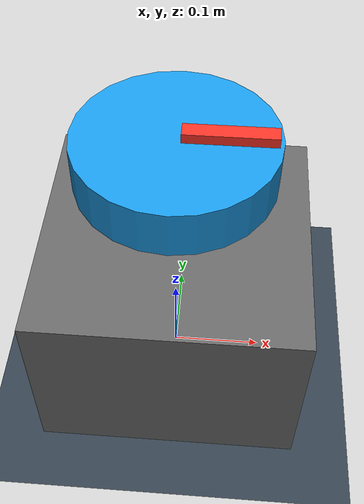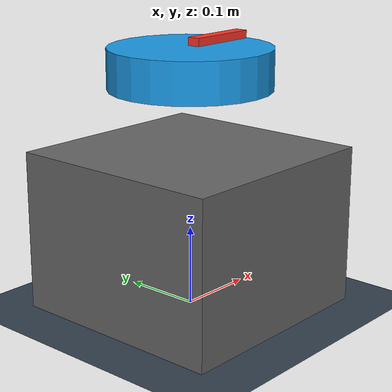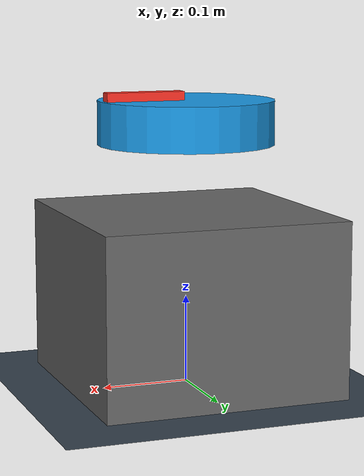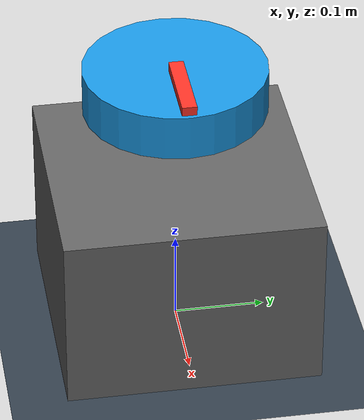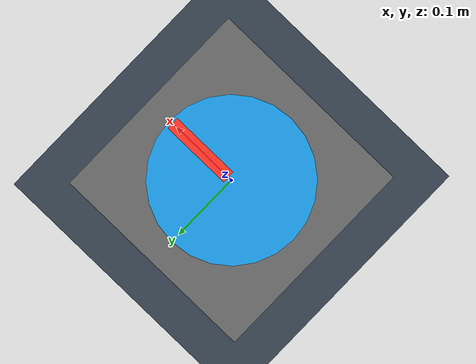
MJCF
<mujoco model="C PID single motor">
  <!-- 输出轴的理想惯量和粘性阻尼，仅用于接口验证，不是 M3508 的辨识结果。 -->
  <option gravity="0 0 0" integrator="implicitfast"/>
  <visual><global azimuth="135" elevation="-25"/></visual>
  <worldbody>
    <light pos="0 0 2"/>
    <geom type="plane" size="1 1 0.1" rgba="0.2 0.25 0.3 1"/>
    <geom type="box" pos="0 0 0.1" size="0.14 0.14 0.1" rgba="0.4 0.4 0.4 1"/>
    <body name="rotor" pos="0 0 0.3">
      <inertial pos="0 0 0" mass="1" diaginertia="0.01 0.01 0.02"/>
      <joint name="shaft" type="hinge" axis="0 0 1" damping="0.02"/>
      <geom type="cylinder" size="0.1 0.025" rgba="0.1 0.6 0.9 1"/>
      <!-- 红色条随轴转动，方便看到旋转方向。 -->
      <geom type="box" pos="0.05 0 0.03" size="0.045 0.008 0.005"
            rgba="1 0.2 0.15 1" contype="0" conaffinity="0"/>
    </body>
  </worldbody>
  <actuator>
    <!-- gear=1：ctrl 就是输出轴力矩 N·m，没有第二层速度环或减速比换算。 -->
    <motor name="drive" joint="shaft" gear="1"/>
  </actuator>
</mujoco>
